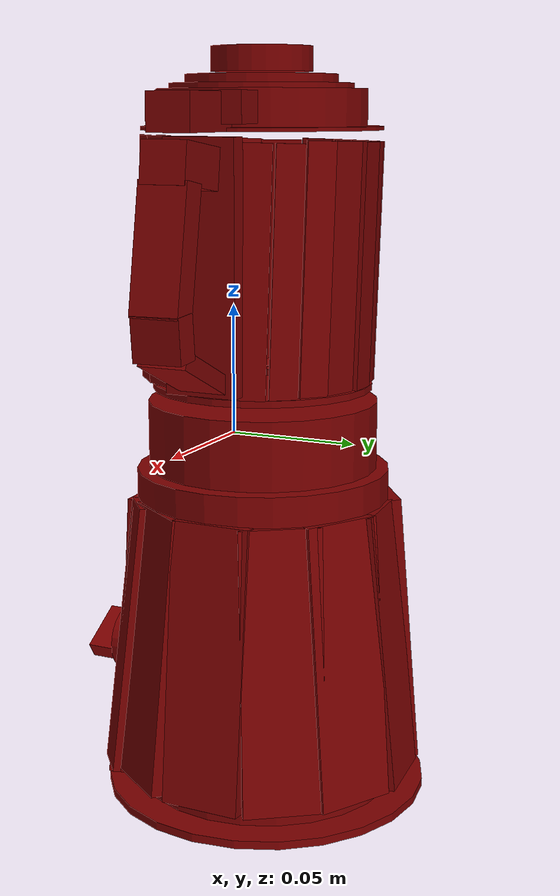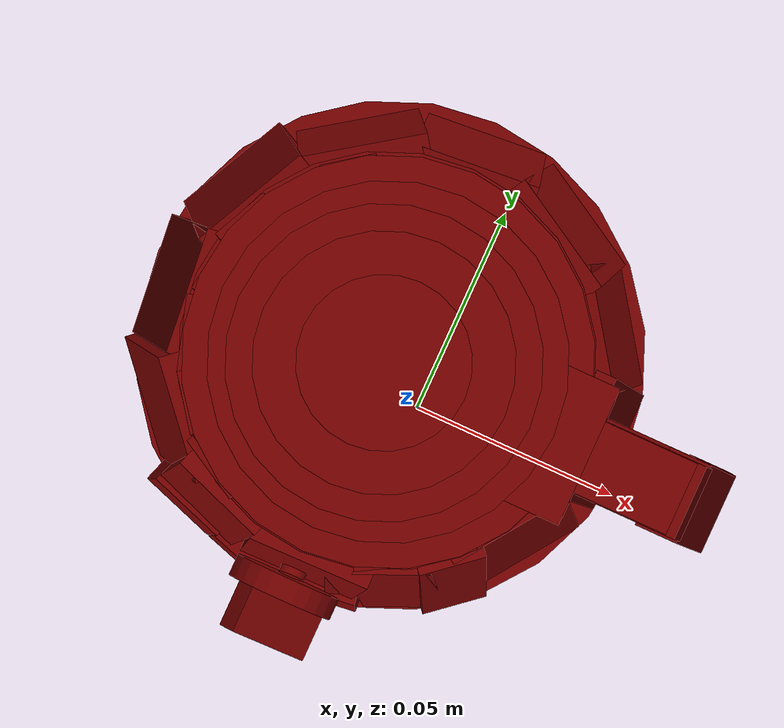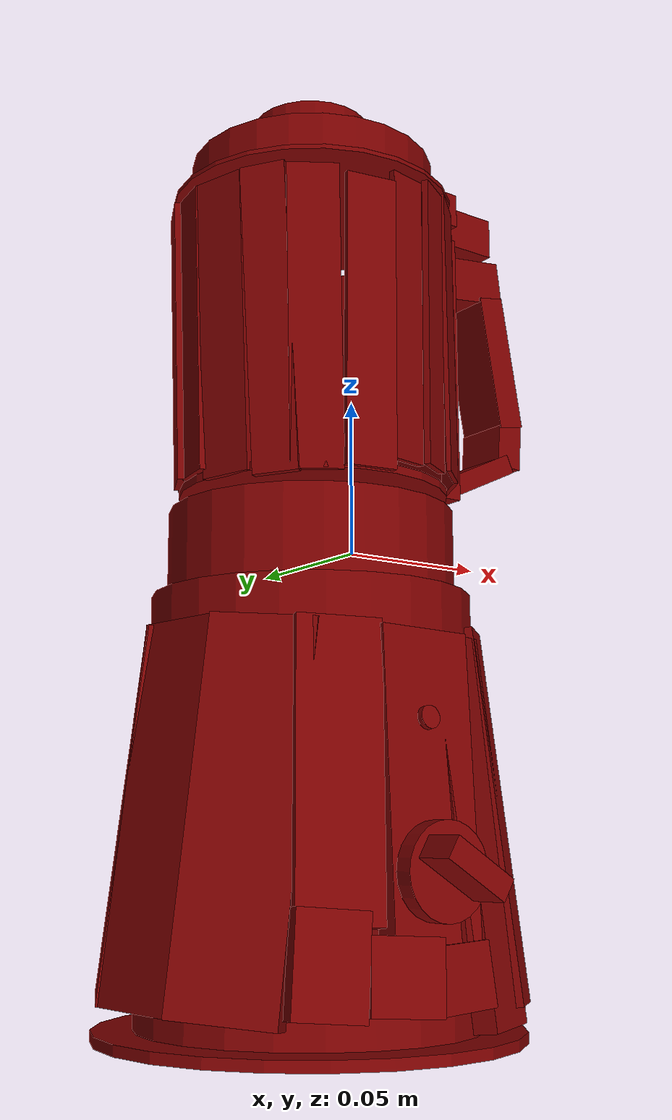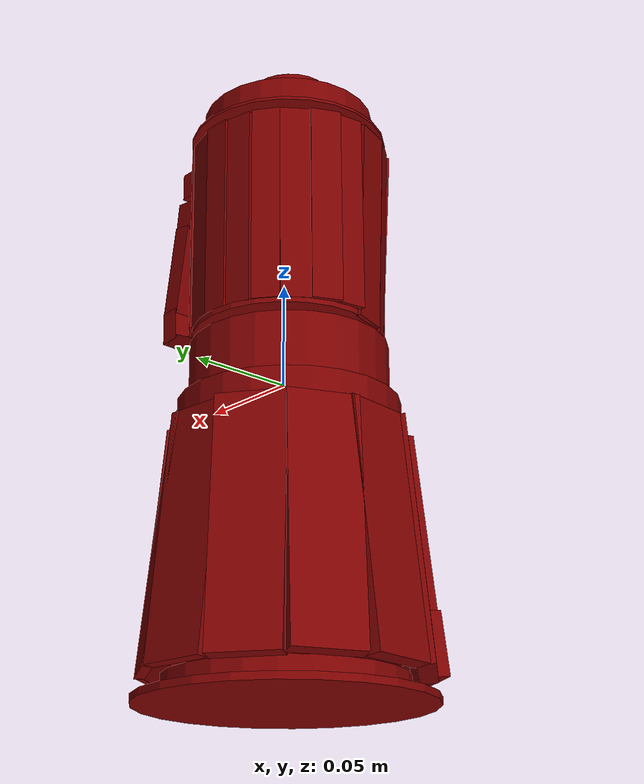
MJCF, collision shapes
<?xml version='1.0' encoding='UTF-8'?>
<mujoco model="model">
  <option timestep="0.002" gravity="0.0 0.0 -9.81"/>
  <compiler angle="radian"/>
  <asset>
    <mesh file="visuals/Blade001.obj" name="Blade001_vis"/>
    <mesh file="visuals/Body001.obj" name="Body001_vis"/>
    <mesh file="visuals/Button001.obj" name="Button001_vis"/>
    <mesh file="visuals/Jug001.obj" name="Jug001_vis"/>
    <mesh file="visuals/Jug001_Clear.obj" name="Jug001_Clear_vis"/>
    <mesh file="visuals/Knob001.obj" name="Knob001_vis"/>
    <mesh file="visuals/Lid001.obj" name="Lid001_vis"/>
    <texture file="visuals/T_BC001.png" name="Body001_material" type="2d"/>
    <material name="Body001_material" rgba="1 1 1 1.0" texture="Body001_material" shininess="0.15" specular="2"/>
    <texture file="visuals/T_BC001.png" name="Button001_material" type="2d"/>
    <material name="Button001_material" rgba="1 1 1 1.0" texture="Button001_material" shininess="0.1" specular="0.7"/>
    <texture file="visuals/T_BC001.png" name="Jug001_Clear_material" type="2d"/>
    <material name="Jug001_Clear_material" rgba="1 1 1 0.800000011920929" texture="Jug001_Clear_material" shininess="0.1" specular="0.7"/>
    <texture file="visuals/T_BC001.png" name="Blade001_material" type="2d"/>
    <material name="Blade001_material" rgba="1 1 1 1.0" texture="Blade001_material" shininess="0.1" specular="0.7"/>
    <texture file="visuals/T_BC001.png" name="Jug001_material" type="2d"/>
    <material name="Jug001_material" rgba="1 1 1 1.0" texture="Jug001_material" shininess="0.1" specular="0.7"/>
    <texture file="visuals/T_BC001.png" name="Lid001_material" type="2d"/>
    <material name="Lid001_material" rgba="1 1 1 1.0" texture="Lid001_material" shininess="0.15" specular="2"/>
    <texture file="visuals/T_BC001.png" name="Knob001_material" type="2d"/>
    <material name="Knob001_material" rgba="1 1 1 1.0" texture="Knob001_material" shininess="0.15" specular="1.5"/>
  </asset>
  <default>
    <default class="visual">
      <geom conaffinity="0" contype="0" group="1" type="mesh"/>
    </default>
    <default class="collision">
      <geom group="0" rgba="0.5 0 0 0.5"/>
    </default>
    <default class="spawn">
      <geom group="0" rgba="1 1 1 0.5" contype="0" conaffinity="0"/>
      <site group="0" rgba="1 1 1 0.5"/>
    </default>
    <default class="region">
      <geom group="1" conaffinity="0" contype="0" rgba="0 1 0 0"/>
    </default>
  </default>
  <worldbody>
    <body>
      <body name="object">
        <geom mesh="Body001_vis" type="mesh" solimp="0.998 0.998 0.001" solref="0.001 1" friction="0.95 0.3 0.1" class="visual" material="Body001_material"/>
        <geom class="collision" type="box" pos="-0.064143 0.002932 -0.081316" size="0.003986308351159096 0.015745818614959717 0.054941773414611816" quat="0.9969801902770996 0.002991716144606471 0.05849111080169678 0.05099374055862427" density="1000.0"/>
        <geom class="collision" type="box" pos="-0.058982 0.031024 -0.081216" size="0.003986308351159096 0.015745816752314568 0.054941773414611816" quat="0.9726268649101257 0.021922767162322998 0.05430987477302551 -0.22487075626850128" density="1000.0"/>
        <geom class="collision" type="box" pos="-0.038216 0.052163 -0.081302" size="0.003986308351159096 0.01574581488966942 0.054941773414611816" quat="0.886173665523529 0.020056521520018578 0.0385282076895237 -0.4613128900527954" density="1000.0"/>
        <geom class="collision" type="box" pos="-0.011009 0.061396 -0.081394" size="0.002653482835739851 0.015745816752314568 0.054941773414611816" quat="0.7362769842147827 0.0351811945438385 0.038393545895814896 -0.6746735572814941" density="1000.0"/>
        <geom class="collision" type="box" pos="0.016331 0.055136 -0.081163" size="0.0021790468599647284 0.01574581488966942 0.054941777139902115" quat="0.49935898184776306 0.04383734613656998 0.025309504941105843 -0.8649151921272278" density="1000.0"/>
        <geom class="collision" type="box" pos="0.035459 0.037120 -0.081344" size="0.0018078562570735812 0.01574581488966942 0.054941773414611816" quat="0.30036523938179016 0.045378535985946655 0.014307779259979725 -0.9526367783546448" density="1000.0"/>
        <geom class="collision" type="box" pos="0.043633 0.010034 -0.080861" size="0.0026048512663692236 0.015745816752314568 0.054941773414611816" quat="7.540232616065623e-08 0.05030030384659767 3.797567593721851e-09 -0.9987341165542603" density="1000.0"/>
        <geom class="collision" type="box" pos="0.034813 -0.019445 -0.080941" size="0.0027222405187785625 0.015745816752314568 0.054941777139902115" quat="0.30034273862838745 -0.04684454947710037 0.01477002538740635 0.9525658488273621" density="1000.0"/>
        <geom class="collision" type="box" pos="0.025874 -0.035717 -0.081308" size="0.0014966638991609216 0.008354835212230682 0.05494178086519241" quat="0.4205015301704407 -0.04792412742972374 0.03366672620177269 0.9053995013237" density="1000.0"/>
        <geom class="collision" type="box" pos="-0.054388 -0.024282 -0.082464" size="0.003986308351159096 0.01574581488966942 0.054941773414611816" quat="0.9343163371086121 0.02062777802348137 0.05481475219130516 0.35160043835639954" density="1000.0"/>
        <geom class="collision" type="box" pos="-0.035549 -0.039831 -0.070365" size="0.003986308351159096 0.012453826144337654 0.04198986291885376" quat="0.8163965344429016 -0.016887996345758438 0.04775163158774376 0.5752662420272827" density="1000.0"/>
        <geom class="collision" type="box" pos="0.008395 -0.042975 -0.083887" size="0.002096703043207526 0.012412848882377148 0.04728870466351509" quat="0.560683012008667 -0.040940262377262115 0.030546532943844795 0.8264535069465637" density="1000.0"/>
        <geom class="collision" type="box" pos="-0.041752 -0.044520 -0.121380" size="0.0035907153505831957 0.010427257977426052 0.014271192252635956" quat="0.8109872341156006 0.0060891201719641685 0.05432721972465515 0.5825042128562927" density="1000.0"/>
        <geom class="collision" type="box" pos="-0.022156 -0.051259 -0.124746" size="0.003590715117752552 0.010427256114780903 0.010370254516601562" quat="0.8053919076919556 -0.005206680856645107 0.04405323788523674 0.5910804271697998" density="1000.0"/>
        <geom class="collision" type="box" pos="-0.003409 -0.051031 -0.125984" size="0.003590715816244483 0.010427255183458328 0.008998429402709007" quat="0.6632282137870789 -0.057456206530332565 0.01936173252761364 0.7459572553634644" density="1000.0"/>
        <geom class="collision" type="box" pos="0.013155 -0.040638 -0.085960" size="0.003590715117752552 0.010427254252135754 0.05563155561685562" quat="0.5456677079200745 -0.05234862118959427 0.011771116405725479 0.8362821340560913" density="1000.0"/>
        <geom class="collision" type="cylinder" pos="-0.010798 0.008530 -0.139860" size="0.05258236825466156 0.004347818437963724" quat="1.0 0.0 0.0 0.0" density="1000.0"/>
        <geom class="collision" type="cylinder" pos="-0.010798 0.008530 -0.145797" size="0.06486986577510834 0.0016201762482523918" quat="1.0 0.0 0.0 0.0" density="1000.0"/>
        <geom class="collision" type="cylinder" pos="-0.011135 0.007027 -0.028176" size="0.049913439899683 0.01324945967644453" quat="1.0 0.0 0.0 0.0" density="1000.0"/>
        <geom class="collision" type="box" pos="-0.009099 -0.045180 -0.079874" size="0.003590715117752552 0.015328536741435528 0.04948468133807182" quat="0.70053631067276 -0.018481511622667313 0.03286641836166382 0.7126199007034302" density="1000.0"/>
        <body name="Button001">
          <joint axis="-0.07474696636199951 0.9928273558616638 -0.09331002831459045" pos="-0.010700 -0.048670 -0.056173" limited="true" name="Button001_joint" range="0.0 0.0006" type="slide" damping="1" frictionloss="1" armature=".01" stiffness="0.2" springref="-0.1"/>
          <geom mesh="Button001_vis" type="mesh" solimp="0.998 0.998 0.001" solref="0.001 1" friction="0.95 0.3 0.1" class="visual" material="Button001_material"/>
          <geom class="collision" type="cylinder" pos="-0.010736 -0.049424 -0.056002" size="0.0033137896098196507 0.0009123445488512516" quat="0.7030347585678101 0.6229007840156555 -0.2200489640235901 0.26327773928642273" density="1000.0"/>
        </body>
        <body name="Jug001_Clear">
          <geom class="region" name="reg_int" type="box" pos="-0.009241999999999998 0.006499999999999999 0.063958" size="0.034897 0.034282 0.049332"/>
          <joint axis="0.0 0.0 1.0" pos="0.006293 0.006808 0.063425" limited="true" name="Jug001_Clear_joint" range="0.0 0.05" type="slide" damping="1" frictionloss="1" armature=".01" stiffness="0.05"/>
          <geom mesh="Jug001_Clear_vis" type="mesh" solimp="0.998 0.998 0.001" solref="0.001 1" friction="0.95 0.3 0.1" class="visual" material="Jug001_Clear_material"/>
          <geom class="collision" type="box" pos="-0.052013 -0.005448 0.064014" size="0.0011411537416279316 0.008665076456964016 0.04689289629459381" quat="0.9886313080787659 -0.0007852297276258469 -0.022206872701644897 0.14870889484882355" density="1000.0"/>
          <geom class="collision" type="box" pos="-0.044626 -0.019573 0.063636" size="0.0013928755652159452 0.007175058592110872 0.047899119555950165" quat="0.9493206143379211 -0.010618006810545921 -0.024758541956543922 0.31315281987190247" density="1000.0"/>
          <geom class="collision" type="box" pos="-0.034911 -0.029057 0.063561" size="0.0009027808555401862 0.007999305613338947 0.046975307166576385" quat="0.8626777529716492 0.00400641979649663 -0.025761157274246216 0.5050815939903259" density="1000.0"/>
          <geom class="collision" type="box" pos="0.006410 -0.034133 0.067305" size="0.0010227970778942108 0.00639775674790144 0.04582451283931732" quat="0.49985271692276 0.00337212230078876 -0.0017554215155541897 0.8661020994186401" density="1000.0"/>
          <geom class="collision" type="box" pos="0.018456 -0.027423 0.067953" size="0.0007466371753253043 0.007702946662902832 0.04582451656460762" quat="0.4149072468280792 -0.003698088228702545 0.0005286823725327849 0.9098560214042664" density="1000.0"/>
          <geom class="collision" type="box" pos="0.035226 0.005741 0.067601" size="0.0034557972103357315 0.014141874387860298 0.04613758996129036" quat="1.0 0.0 0.0 0.0" density="1000.0"/>
          <geom class="collision" type="box" pos="0.016510 0.042003 0.066424" size="0.0007405881187878549 0.005810028873383999 0.04582451283931732" quat="0.4493381381034851 0.004741608630865812 -0.01437248196452856 -0.8932335376739502" density="1000.0"/>
          <geom class="collision" type="box" pos="0.004084 0.046786 0.066056" size="0.0008923254208639264 0.007550706155598164 0.04582451283931732" quat="0.6081756353378296 0.001975441351532936 -0.015004957094788551 -0.7936581969261169" density="1000.0"/>
          <geom class="collision" type="box" pos="-0.035993 0.042409 0.065292" size="0.0009781541302800179 0.006452578119933605 0.04582451283931732" quat="0.8918564915657043 -0.004716404248028994 -0.014380785636603832 -0.45206522941589355" density="1000.0"/>
          <geom class="collision" type="box" pos="-0.044699 0.032845 0.065311" size="0.0011494028149172664 0.007025028578937054 0.04582451656460762" quat="0.9534119963645935 -0.006988314911723137 -0.013424396514892578 -0.30129143595695496" density="1000.0"/>
          <geom class="collision" type="box" pos="0.063578 0.006206 0.076313" size="0.005088288802653551 0.009546133689582348 0.023384999483823776" quat="0.9961947202682495 0.0 -0.08715573698282242 0.0" density="1000.0"/>
          <geom class="collision" type="box" pos="0.052190 0.006167 0.104347" size="0.007519893813878298 0.008824963122606277 0.01210277620702982" quat="0.7518044114112854 -0.00046680914238095284 0.6593855023384094 0.0008093591895885766" density="1000.0"/>
          <geom class="collision" type="box" pos="0.051941 0.006574 0.032930" size="0.0033454347867518663 0.009491372853517532 0.016489258036017418" quat="0.843391478061676 0.0 0.5372995734214783 0.0" density="1000.0"/>
          <geom class="collision" type="cylinder" pos="-0.009949 0.007546 0.018520" size="0.04288448393344879 0.0013050753623247147" quat="1.0 0.0 0.0 0.0" density="1000.0"/>
          <geom class="collision" type="box" pos="0.067062 0.006688 0.047009" size="0.004980669356882572 0.009491369128227234 0.008270477876067162" quat="0.9994047284126282 0.007976317778229713 0.033564552664756775 -0.0002168510400224477" density="1000.0"/>
          <geom class="collision" type="box" pos="-0.004978 -0.035022 0.067346" size="0.001022796961478889 0.006397756282240152 0.04582451283931732" quat="0.6432011723518372 0.003626530757173896 -0.001140607870183885 0.7656878232955933" density="1000.0"/>
          <geom class="collision" type="box" pos="-0.018697 -0.034973 0.063611" size="0.0010227971943095326 0.008234738372266293 0.04582451283931732" quat="0.7698814272880554 0.0037721358239650726 -0.0004729771171696484 0.6381756067276001" density="1000.0"/>
          <geom class="collision" type="box" pos="-0.052423 0.021847 0.065381" size="0.0011494026985019445 0.007025028113275766 0.04582451656460762" quat="0.9765552878379822 -0.00816198717802763 -0.012744918465614319 -0.2147340178489685" density="1000.0"/>
          <geom class="collision" type="box" pos="-0.054221 0.009736 0.065602" size="0.0011494028149172664 0.007025029044598341 0.04582451656460762" quat="0.9976705312728882 -0.009973456151783466 -0.011383378878235817 -0.06651640683412552" density="1000.0"/>
          <geom class="collision" type="box" pos="-0.023395 0.047373 0.065455" size="0.0009781541302800179 0.006452578119933605 0.04582451283931732" quat="0.7688629031181335 -0.0013972119195386767 -0.015069808810949326 -0.6392345428466797" density="1000.0"/>
          <geom class="collision" type="box" pos="-0.010786 0.049717 0.065675" size="0.000978154013864696 0.006452578119933605 0.04582451283931732" quat="0.7119560837745667 -0.00011576183896977454 -0.015133999288082123 -0.702060878276825" density="1000.0"/>
          <geom class="collision" type="box" pos="0.022346 0.033132 0.065493" size="0.000740588060580194 0.005810028873383999 0.04582451283931732" quat="0.3184846043586731 0.006726743653416634 -0.01355736143887043 -0.9478071928024292" density="1000.0"/>
          <geom class="collision" type="box" pos="0.030102 0.022892 0.065878" size="0.0007405880023725331 0.005810028873383999 0.04582451283931732" quat="0.1984029859304428 0.008357168175280094 -0.012617817148566246 -0.9800036549568176" density="1000.0"/>
          <geom class="collision" type="box" pos="0.028244 -0.014893 0.067964" size="0.0007466371171176434 0.00865502841770649 0.04582451283931732" quat="0.23986472189426422 -0.0035369955003261566 0.0012020895956084132 0.9707991480827332" density="1000.0"/>
          <body name="Blade001">
            <joint axis="0.0 0.0 1.0" pos="-0.011345 0.006755 0.025325" limited="false" name="Blade001_joint" range="0 360" type="hinge" damping="1" frictionloss="1" armature=".01" stiffness="0.05"/>
            <geom mesh="Blade001_vis" type="mesh" solimp="0.998 0.998 0.001" solref="0.001 1" friction="0.95 0.3 0.1" class="visual" material="Blade001_material"/>
            <geom class="collision" type="box" pos="-0.011335 0.004478 0.023163" size="0.0030732648447155952 0.020795876160264015 0.0011587267508730292" quat="1.0 0.0 0.0 0.0" density="1000.0"/>
            <geom class="collision" type="box" pos="-0.027368 0.006611 0.025734" size="0.0030642191413789988 0.010015010833740234 0.0011587272165343165" quat="0.6698104739189148 -0.09623399376869202 0.08818221837282181 -0.7309697866439819" density="1000.0"/>
            <geom class="collision" type="box" pos="0.003654 0.006611 0.025642" size="0.0030642191413789988 0.010015010833740234 0.0011587273329496384" quat="0.6653264760971069 0.12802685797214508 -0.11731503903865814 -0.7260764241218567" density="1000.0"/>
          </body>
          <body name="Jug001">
            <geom mesh="Jug001_vis" type="mesh" solimp="0.998 0.998 0.001" solref="0.001 1" friction="0.95 0.3 0.1" class="visual" material="Jug001_material"/>
            <geom class="collision" type="cylinder" pos="-0.011161 0.005777 0.003098" size="0.00906098261475563 0.008652156218886375" quat="1.0 0.0 0.0 0.0" density="1000.0"/>
            <geom class="collision" type="cylinder" pos="-0.011135 0.007027 -0.001064" size="0.04508111625909805 0.01324945967644453" quat="1.0 0.0 0.0 0.0" density="1000.0"/>
          </body>
          <body name="Lid001">
            <joint axis="0.0 0.0 1.0" pos="0.000454 0.006541 0.127432" limited="true" name="Lid001_joint" range="0.0 0.05" type="slide" damping="1" frictionloss="1" armature=".01" stiffness="0.05"/>
            <geom mesh="Lid001_vis" type="mesh" solimp="0.998 0.998 0.001" solref="0.001 1" friction="0.95 0.3 0.1" class="visual" material="Lid001_material"/>
            <geom class="collision" type="cylinder" pos="-0.010798 0.006949 0.123598" size="0.03988746181130409 0.006859514396637678" quat="1.0 0.0 0.0 0.0" density="1000.0"/>
            <geom class="collision" type="cylinder" pos="-0.010798 0.006949 0.116120" size="0.045904722064733505 0.0007029778207652271" quat="1.0 0.0 0.0 0.0" density="1000.0"/>
            <geom class="collision" type="cylinder" pos="-0.011513 0.006412 0.141297" size="0.019289351999759674 0.004582580644637346" quat="1.0 0.0 0.0 0.0" density="1000.0"/>
            <geom class="collision" type="box" pos="0.045153 0.006207 0.122294" size="0.015266613103449345 0.008549760095775127 0.006911179516464472" quat="1.0 0.0 0.0 0.0" density="1000.0"/>
            <geom class="collision" type="box" pos="0.031508 0.006207 0.123832" size="0.006593892816454172 0.016444940119981766 0.0057326871901750565" quat="1.0 0.0 0.0 0.0" density="1000.0"/>
            <geom class="collision" type="cylinder" pos="-0.011513 0.006412 0.133892" size="0.028988415375351906 0.0018546077189967036" quat="1.0 0.0 0.0 0.0" density="1000.0"/>
            <geom class="collision" type="cylinder" pos="-0.011513 0.006412 0.130252" size="0.035023611038923264 0.002240724628791213" quat="1.0 0.0 0.0 0.0" density="1000.0"/>
          </body>
        </body>
        <body name="Knob001">
          <joint axis="0.0 1.0 0.0" pos="-0.010994 -0.056961 -0.097077" limited="true" name="Knob001_joint" range="0.0 4.886921905584122" type="hinge" damping="0.05" armature="0.001"/>
          <geom mesh="Knob001_vis" type="mesh" solimp="0.998 0.998 0.001" solref="0.001 1" friction="0.95 0.3 0.1" class="visual" material="Knob001_material"/>
          <geom class="collision" type="cylinder" pos="-0.011212 -0.054815 -0.097667" size="0.01372851338237524 0.0028194477781653404" quat="0.7071067094802856 0.7071068286895752 0.0 0.0" density="1000.0"/>
          <geom class="collision" type="box" pos="-0.010586 -0.063688 -0.096855" size="0.003505827160552144 0.00607439037412405 0.011031358502805233" quat="0.8721806406974792 0.0 -0.4891839027404785 0.0" density="1000.0"/>
        </body>
        <geom class="region" name="reg_main" type="box" pos="-0.010925499999999998 0.0068080000000000016 0.0" size="0.06328149999999999 0.063283 0.147364"/>
      </body>
    </body>
  </worldbody>
  <actuator>
    <motor name="Button001_joint_actuator" joint="Button001_joint" gear="0.1"/>
    <motor name="Jug001_Clear_joint_actuator" joint="Jug001_Clear_joint" gear="15"/>
    <motor name="Knob001_joint_actuator" joint="Knob001_joint" gear="15"/>
    <motor name="Blade001_joint_actuator" joint="Blade001_joint" gear="15"/>
    <motor name="Lid001_joint_actuator" joint="Lid001_joint" gear="15"/>
  </actuator>
</mujoco>
